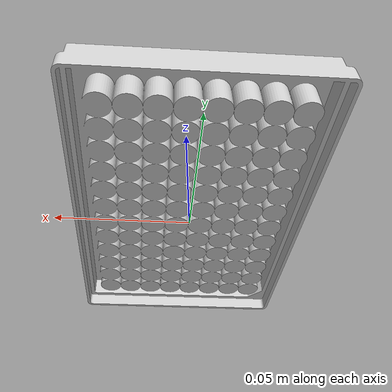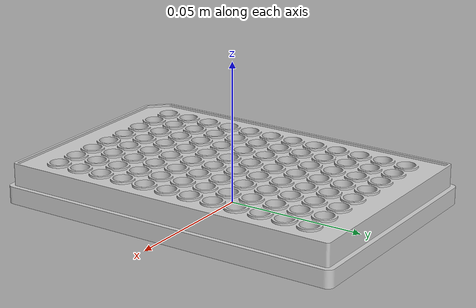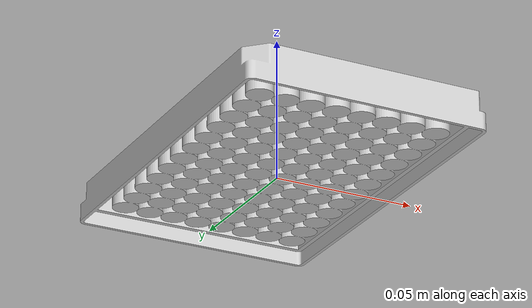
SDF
<?xml version="1.0" ?>
<sdf version="1.5">
  <model name="96 well plate">
    <static>false</static>
    <link name="link">
      <!-- Visual -->
      <visual name="visual">
        <geometry>
          <mesh>
            <uri>model://96well_plate/meshes/96well_plate.dae</uri>
          </mesh>
        </geometry>
      </visual>

      <!-- Inertial -->
      <inertial>
        <mass>0.2</mass>
        <inertia>
          <ixx>1.1248e-01</ixx>
          <ixy>0.0</ixy>
          <ixz>0.0</ixz>
          <iyy>0.3149e-01</iyy>
          <iyz>0.0</iyz>
          <izz>0.3149e-01</izz>
        </inertia>
      </inertial>

      <!-- collision -->
      <collision name="collision">
        <geometry>
          <mesh>
            <uri>model://96well_plate/collision/96well_plate.stl</uri>
          </mesh>
        </geometry>
        <surface>
						<contact>
							<ode>
								<soft_cfm>0.2</soft_cfm>
								<soft_erp>0.2</soft_erp>
								<kp>1e5</kp>
								<kd>1.0</kd>
							</ode>
						</contact>

						<friction>
							<ode>
								<mu>1e16</mu>
								<mu2>1e16</mu2>
								<fdir1>1.000000 1.000000 1.000000</fdir1>
							</ode>
						</friction>
						<contact>
							<ode>
								<max_vel>0.01</max_vel>
								<min_depth>0.001</min_depth>
							</ode>
						</contact>
					</surface>
      </collision>

    </link>
  </model>

</sdf>
